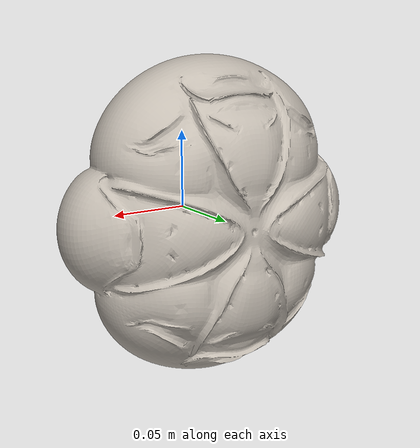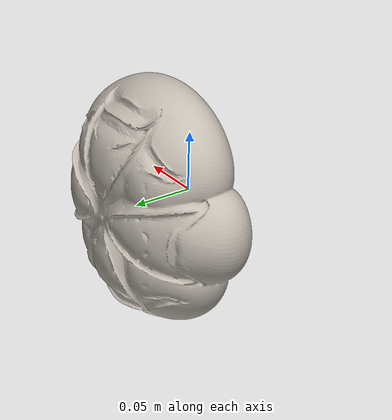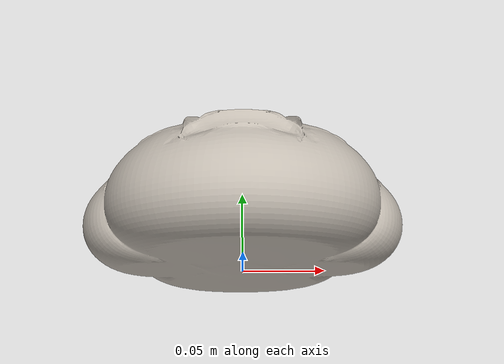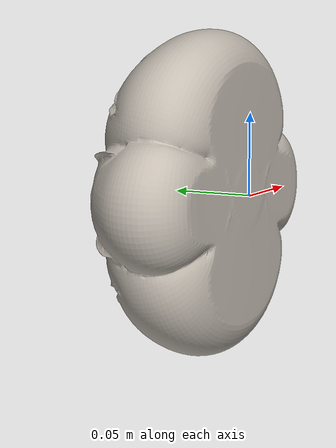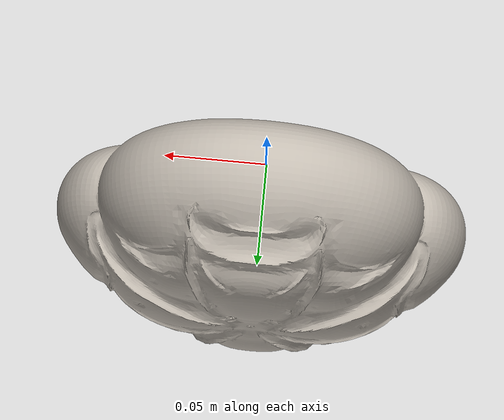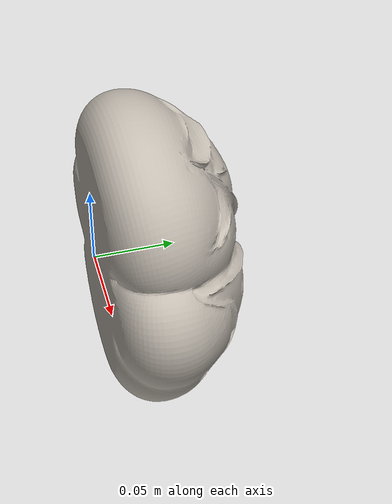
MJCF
<mujoco model="075_bread">
  <asset>
    <mesh name="075_bread_visual" file="075_bread_visual.obj"/>
    <mesh name="075_bread_collision" file="075_bread_collision.stl"/>
    <texture name="075_bread_tex" type="2d" file="075_bread.png"/>
    <material name="075_bread_mat" texture="075_bread_tex"/>
  </asset>
  <worldbody>
    <body name="075_bread" pos="0 0 0">
      <freejoint/>
      <geom type="mesh" mesh="075_bread_visual" material="075_bread_mat"
            mass="0.9058" contype="0" conaffinity="0"/>
      <geom type="mesh" mesh="075_bread_collision" mass="0"
            contype="1" conaffinity="1"
            friction="0.5 .005 0.01"
            rgba="0 0 0 0"/>
    </body>
  </worldbody>
</mujoco>
